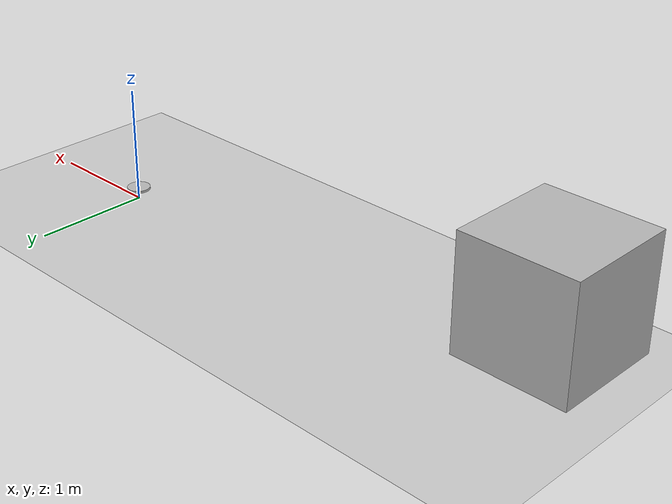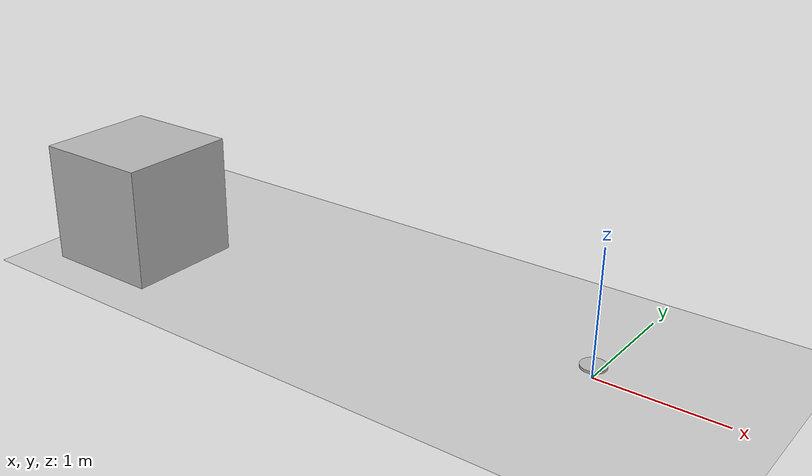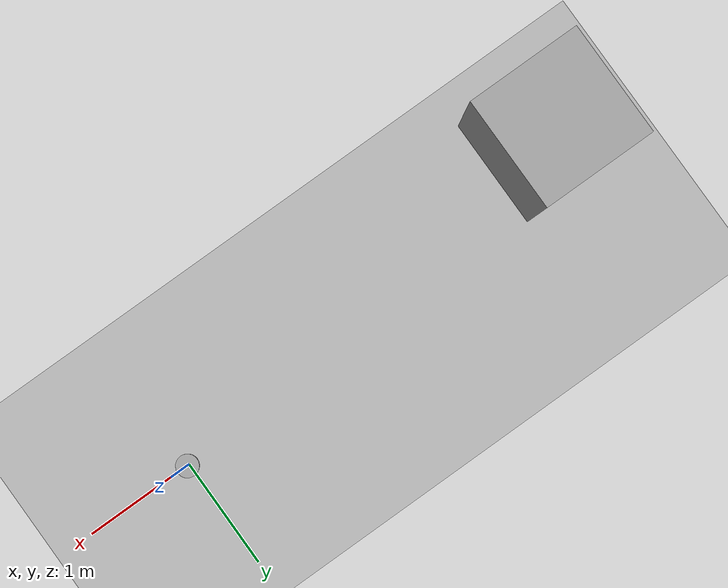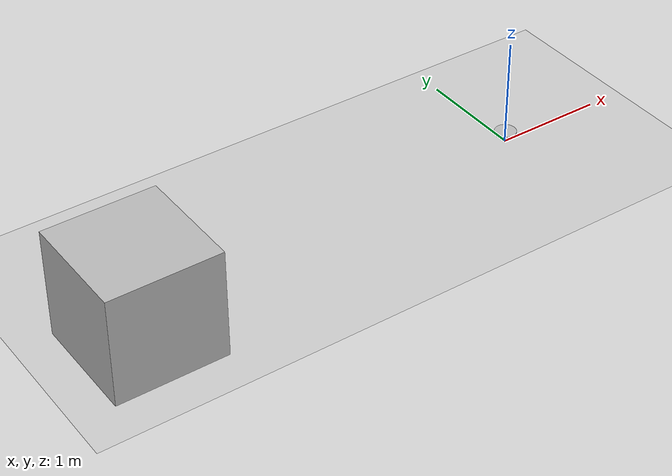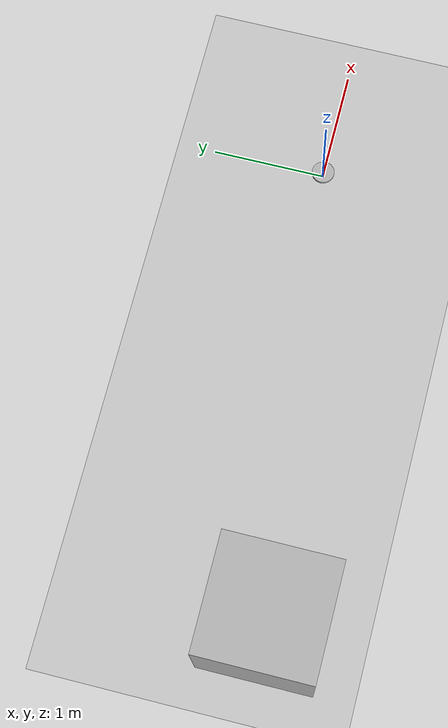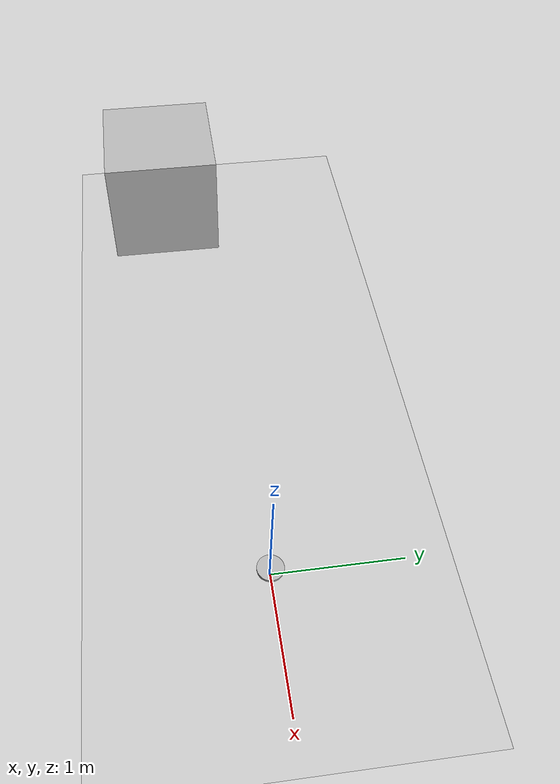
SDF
<?xml version="1.0" ?>

<sdf version="1.6">
  <world name="sensors">
    <physics name="1ms" type="ignored">
      <max_step_size>0.001</max_step_size>
      <real_time_factor>1.0</real_time_factor>
    </physics>
    <plugin
      filename="gz-sim-physics-system"
      name="gz::sim::systems::Physics">
    </plugin>
    <plugin
      filename="gz-sim-user-commands-system"
      name="gz::sim::systems::UserCommands">
    </plugin>
    <plugin
      filename="gz-sim-sensors-system"
      name="gz::sim::systems::Sensors">
    </plugin>
    <plugin
      filename="gz-sim-scene-broadcaster-system"
      name="gz::sim::systems::SceneBroadcaster">
    </plugin>

    <light type="directional" name="sun">
      <cast_shadows>true</cast_shadows>
      <pose>0 0 10 0 0 0</pose>
      <diffuse>0.8 0.8 0.8 1</diffuse>
      <specular>0.2 0.2 0.2 1</specular>
      <attenuation>
        <range>1000</range>
        <constant>0.9</constant>
        <linear>0.01</linear>
        <quadratic>0.001</quadratic>
      </attenuation>
      <direction>-0.5 0.1 -0.9</direction>
    </light>

    <model name="ground_plane">
      <static>true</static>
      <link name="link">
        <collision name="collision">
          <geometry>
            <plane>
              <normal>0 0 1</normal>
              <size>100 100</size>
            </plane>
          </geometry>
        </collision>
        <visual name="visual">
          <geometry>
            <plane>
              <normal>0 0 1</normal>
              <size>100 100</size>
            </plane>
          </geometry>
          <material>
            <ambient>0.8 0.8 0.8 1</ambient>
            <diffuse>0.8 0.8 0.8 1</diffuse>
            <specular>0.8 0.8 0.8 1</specular>
          </material>
        </visual>
      </link>
    </model>

    <model name="laser_model">
      <plugin name="gzyarp::Laser" filename="gz-sim-yarp-laser-system">
        <yarpConfigurationFile>model://laser.ini</yarpConfigurationFile>
      </plugin>
      <static>true</static>
      <pose>0 0 0.1 0 0 0</pose>
      <link name="link_1">
        <visual name="visual">
          <geometry>
            <cylinder>
              <radius>0.1</radius>
              <length>0.02</length>
            </cylinder>
          </geometry>
        </visual>
        <sensor name ="laser_sensor" type="gpu_lidar">
          <lidar>
            <!-- IMPORTANT: Make sure that this values matches specified in laser.ini -->
            <scan>
              <horizontal>
                <samples>360</samples>
                <resolution>1</resolution>
                <min_angle>-3.14159</min_angle>
                <max_angle>3.14159</max_angle>
              </horizontal>
            </scan>
            <range>
              <min>0.10</min>
              <max>5.0</max>
              <resolution>0.01</resolution>
            </range>
            <noise>
              <type>gaussian</type>
              <mean>0.0</mean>
              <stddev>0.005</stddev>
            </noise>
          </lidar>
          <always_on>1</always_on>
          <update_rate>30</update_rate>
          <visualize>true</visualize>
        </sensor>
      </link>
      <plugin name="gzyarp::RobotInterface" filename="gz-sim-yarp-robotinterface-system">
        <yarpRobotInterfaceConfigurationFile>model://laser_nws.xml</yarpRobotInterfaceConfigurationFile>
      </plugin>
    </model>

    <model name="box">
      <pose>-4.0 -0.5 0.5 0 0 0</pose>
      <static>true</static>
      <link name="link">
        <inertial>
          <mass>1.0</mass>
          <inertia>
            <ixx>0.083</ixx>
            <ixy>0.0</ixy>
            <ixz>0.0</ixz>
            <iyy>0.083</iyy>
            <iyz>0.0</iyz>
            <izz>0.083</izz>
          </inertia>
        </inertial>
        <collision name="collision">
          <geometry>
            <box>
              <size>1 1 1</size>
            </box>
          </geometry>
        </collision>
        <visual name="visual">
          <geometry>
            <box>
              <size>1 1 1</size>
            </box>
          </geometry>
        </visual>
      </link>
    </model>
  </world>
</sdf>
